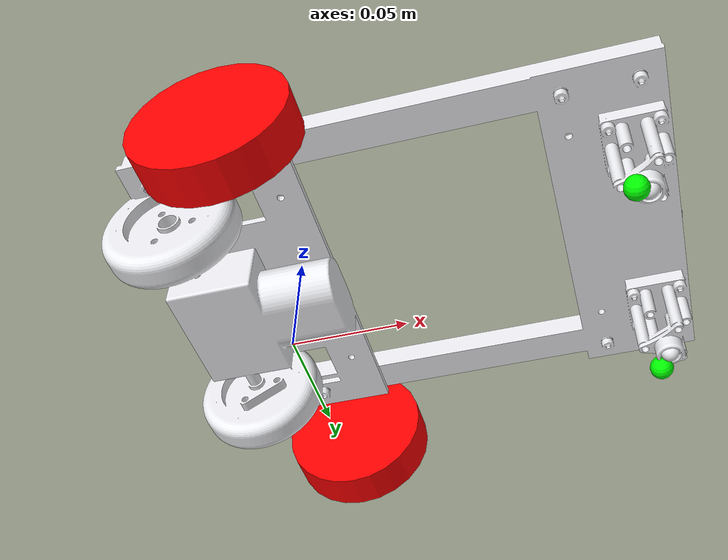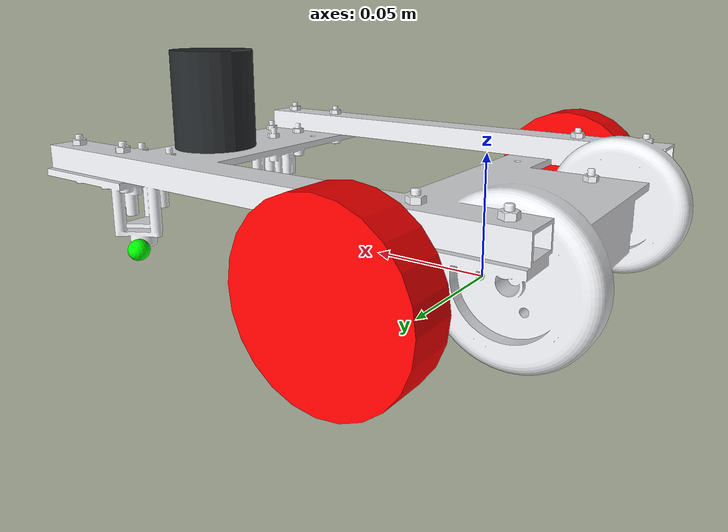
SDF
<sdf version='1.8'>
  <model name="LidarRobo4">
  <pose>0 0 0 0 0 0</pose>

    <link name="base_footprint"/>

    <link name="base_link">
      <inertial>
        <pose>0.1 0 0 0 0 0</pose>
        <inertia>
          <ixx>4.2111447e-02</ixx>
          <ixy>0</ixy>
          <ixz>0</ixz>
          <iyy>4.2111447e-02</iyy>
          <iyz>0</iyz>
          <izz>7.5254874e-02</izz>
        </inertia>
        <mass>1.3729096e+00</mass>
      </inertial>
      <collision name="base_collision">
        <pose>-0.064 0.08 0.06 0 0 -1.57</pose>
        <geometry>
          <mesh>
            <uri>model://LidarRobo5/meshes/2DRoboPrac.stl</uri>
          </mesh>
        </geometry>
      </collision>
      <visual name="base_visual">
        <pose>-0.064 0.08 0.06 0 0 -1.57</pose>
        <geometry>
          <mesh>
            <uri>model://LidarRobo5/meshes/2DRoboPrac.dae</uri>
          </mesh>
        </geometry>
        <material>
          <diffuse> 0.921568627 0.925490196 0.941176471 1</diffuse>
          <ambient> 0.921568627 0.925490196 0.941176471 1</ambient>
          <specular>0.921568627 0.925490196 0.941176471 1</specular>
        </material>
      </visual>
    </link>

    <joint name="base_joint" type="fixed">
      <parent>base_footprint</parent>
      <child>base_link</child>
    </joint>

    <!-- LIDAR -->
    <link name="base_scan">
      <pose>0.15 0 0.06 0 0 0</pose>
      <inertial>
        <inertia>
          <ixx>0.001</ixx>
          <ixy>0</ixy>
          <ixz>0</ixz>
          <iyy>0.001</iyy>
          <iyz>0</iyz>
          <izz>0.001</izz>
        </inertia>
        <mass>0.114</mass>
      </inertial>
      <collision name="lidar_sensor_collision">
        <geometry>
              <cylinder>
                  <radius>0.02</radius>
                  <length>0.05</length>
              </cylinder>
            </geometry>
      </collision>
      <visual name="lidar_sensor_visual">
        <geometry>
              <cylinder>
                  <radius>0.02</radius>
                  <length>0.05</length>
              </cylinder>
            </geometry>
        <material>
          <diffuse> 0.145098039 0.156862745 0.164705882 1</diffuse>
          <ambient> 0.145098039 0.156862745 0.164705882 1</ambient>
          <specular>0.145098039 0.156862745 0.164705882 1</specular>
        </material>
      </visual>
      <sensor name="gpu_lidar" type="gpu_lidar">
        <topic>scan</topic>
        <ignition_frame_id>base_scan</ignition_frame_id>
        <update_rate>5</update_rate>
        <ray>
          <scan>
            <horizontal>
              <samples>360</samples>
              <resolution>1</resolution>
              <min_angle>0</min_angle>
              <max_angle>6.28</max_angle>
            </horizontal>
          </scan>
          <range>
            <min>0.120000</min>
            <max>20.0</max>
            <resolution>0.015000</resolution>
          </range>
        </ray>
        <always_on>true</always_on>
        <visualize>true</visualize>
      </sensor>
    </link>
    <joint name="lidar_joint" type="fixed">
      <parent>base_link</parent>
      <child>base_scan</child>
    </joint>

    <!-- Wheel left -->
    <link name="wheel_left_link">
      <pose>0.0 0.095 0.023 -1.57 0 0</pose>
      <inertial>
        <inertia>
          <ixx>1.1175580e-05</ixx>
          <ixy>-4.2369783e-11</ixy>
          <ixz>-5.9381719e-09</ixz>
          <iyy>1.1192413e-05</iyy>
          <iyz>-1.4400107e-11</iyz>
          <izz>2.0712558e-05</izz>
        </inertia>
        <mass>0.1</mass>
      </inertial>
      <collision name="wheel_left_collision">
        <geometry>
          <cylinder>
            <radius>0.033</radius>
            <length>0.018</length>
          </cylinder>
        </geometry>
      </collision>
      <visual name="wheel_left_visual">
        <geometry>
          <cylinder>
            <radius>0.033</radius>
            <length>0.018</length>
          </cylinder>
          </geometry>
          <material>
            <ambient>1.0 0.0 0.0 1</ambient>
            <diffuse>1.0 0.0 0.0 1</diffuse>
            <specular>1.0 0.0 0.0 1</specular>
          </material>
      </visual>
    </link>
    <joint name="wheel_left_joint" type="revolute">
      <parent>base_link</parent>
      <child>wheel_left_link</child>
      <axis>
        <xyz>0 0 1</xyz>
      </axis>
    </joint>

    <!-- Wheel right -->
    <link name="wheel_right_link">
      <pose>0.0 -0.095 0.023 -1.57 0 0</pose>
      <inertial>
        <inertia>
          <ixx>1.1175580e-05</ixx>
          <ixy>-4.2369783e-11</ixy>
          <ixz>-5.9381719e-09</ixz>
          <iyy>1.1192413e-05</iyy>
          <iyz>-1.4400107e-11</iyz>
          <izz>2.0712558e-05</izz>
        </inertia>
        <mass>0.1</mass>
      </inertial>
      <collision name="wheel_right_collision">
        <geometry>
          <cylinder>
            <radius>0.033</radius>
            <length>0.018</length>
          </cylinder>
        </geometry>
      </collision>
      <visual name="wheel_right_visual">
        <geometry>
          <cylinder>
            <radius>0.033</radius>
            <length>0.018</length>
          </cylinder>
          </geometry>
          <material>
            <ambient>1.0 0.0 0.0 1</ambient>
            <diffuse>1.0 0.0 0.0 1</diffuse>
            <specular>1.0 0.0 0.0 1</specular>
          </material>
        <material>
          <diffuse> 0.145098039 0.156862745 0.164705882 1</diffuse>
          <ambient> 0.145098039 0.156862745 0.164705882 1</ambient>
          <specular>0.145098039 0.156862745 0.164705882 1</specular>
        </material>
      </visual>
    </link>
    <joint name="wheel_right_joint" type="revolute">
      <parent>base_link</parent>
      <child>wheel_right_link</child>
      <axis>
        <xyz>0 0 1</xyz>
      </axis>
    </joint>

    <link name='caster_back_right_link'>
      <pose>0.15 -0.05 -0.004 -1.57 0 0</pose>
      <inertial>
        <mass>0.001</mass>
        <inertia>
          <ixx>0.00001</ixx>
          <ixy>0.000</ixy>
          <ixz>0.000</ixz>
          <iyy>0.00001</iyy>
          <iyz>0.000</iyz>
          <izz>0.00001</izz>
        </inertia>
      </inertial>
      <visual name='caster_back_right_visual'>
          <geometry>
              <sphere>
                  <radius>0.005</radius>
              </sphere>
          </geometry>
          <material>
              <ambient>0.0 1 0.0 1</ambient>
              <diffuse>0.0 1 0.0 1</diffuse>
              <specular>0.0 1 0.0 1</specular>
          </material>
        </visual>
      <collision name='collision'>
        <geometry>
          <sphere>
            <radius>0.005</radius>
          </sphere>
        </geometry>
      </collision>
    </link>
    <joint name='caster_back_right_joint' type='ball'>
      <parent>base_link</parent>
      <child>caster_back_right_link</child>
    </joint>

    <link name='caster_back_left_link'>
      <pose>0.15 0.05 -0.004 -1.57 0 0</pose>
      <inertial>
        <mass>0.001</mass>
        <inertia>
          <ixx>0.00001</ixx>
          <ixy>0.000</ixy>
          <ixz>0.000</ixz>
          <iyy>0.00001</iyy>
          <iyz>0.000</iyz>
          <izz>0.00001</izz>
        </inertia>
      </inertial>
      <visual name='caster_back_left_visual'>
          <geometry>
              <sphere>
                  <radius>0.005</radius>
              </sphere>
          </geometry>
          <material>
              <ambient>0.0 1 0.0 1</ambient>
              <diffuse>0.0 1 0.0 1</diffuse>
              <specular>0.0 1 0.0 1</specular>
          </material>
        </visual>
      <collision name='collision'>
        <geometry>
          <sphere>
            <radius>0.005</radius>
          </sphere>
        </geometry>
      </collision>
    </link>
    <joint name='caster_back_left_joint' type='ball'>
      <parent>base_link</parent>
      <child>caster_back_left_link</child>
    </joint>

    <!-- Global odometer -->
    <plugin
      filename="ignition-gazebo-odometry-publisher-system"
      name="ignition::gazebo::systems::OdometryPublisher">
      <odom_publish_frequency>50</odom_publish_frequency>
      <odom_topic>/odom</odom_topic>
      <odom_frame>odom</odom_frame>
      <robot_base_frame>base_footprint</robot_base_frame>
      <tf_topic>/odom/tf</tf_topic>
    </plugin>

    <!-- Differential drive -->
    <plugin filename="libignition-gazebo-diff-drive-system.so"
      name="ignition::gazebo::systems::DiffDrive">
      <left_joint>wheel_left_joint</left_joint>
      <right_joint>wheel_right_joint</right_joint>
      <wheel_separation>0.19</wheel_separation>
      <wheel_radius>0.033</wheel_radius>
      <topic>cmd_vel</topic>
    </plugin>

    <!-- Joint state publisher -->
    <plugin filename="libignition-gazebo-joint-state-publisher-system.so"
      name="ignition::gazebo::systems::JointStatePublisher">
      <topic>joint_states</topic>
    </plugin>

  </model>
</sdf>
